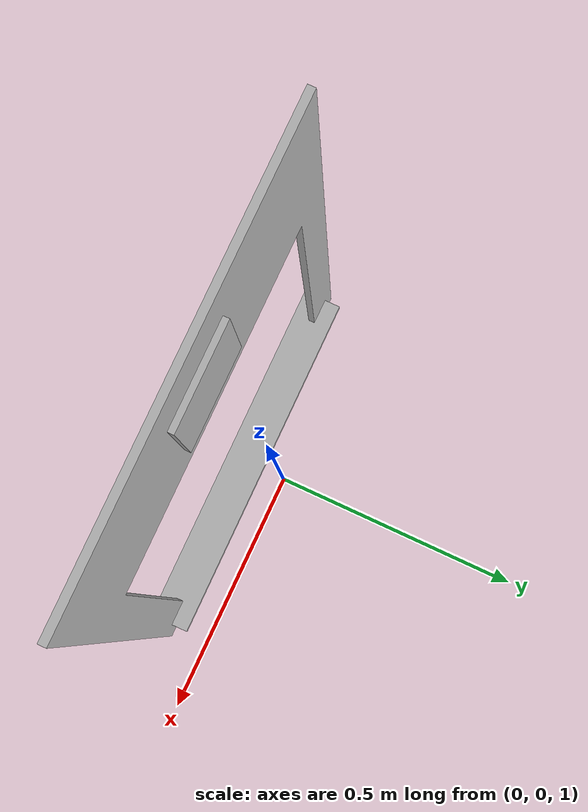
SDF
<?xml version='1.0'?>
<sdf version='1.5'>
    <model name="Cutout 6">
        <pose>0 0 1 0 0 0</pose>
        <static>true</static>
        <link name="cutout_obstacle">
            <collision name="collision">
                <geometry>
                    <mesh>
                        <uri>model://cutout_6/meshes/cutout.stl</uri>
                        <scale>1 1 1</scale>
                    </mesh>
                </geometry>
            </collision>

            <visual name="visual">
                <geometry>
                    <mesh>
                        <uri>model://cutout_6/meshes/cutout.stl</uri>
                        <scale>1 1 1</scale>
                    </mesh>
                </geometry>
            </visual>
        </link>
        <link name='april_tag_front'>
            <pose frame=''>0 -0.09 0.87 1.5708 -1.5708 0</pose>
            <visual name='at_visual_front'>
                <geometry>
                <box>
                <size>0.1651 0.1651 0.01</size>
                </box>
                </geometry>
                <material>
                <script>
                    <uri>model://Apriltag36_11_00006/materials/scripts</uri>
                    <uri>model://Apriltag36_11_00006/materials/textures</uri>
                    <name>Apriltag36_11_00006</name>
                </script>
                </material>
            </visual>
        </link>
        <link name='april_tag_back'>
            <pose frame=''>0 -0.06 0.87 1.5708 1.5708 0</pose>
            <visual name='at_visual_back'>
                <geometry>
                <box>
                <size>0.1651 0.1651 0.01</size>
                </box>
                </geometry>
                <material>
                <script>
                    <uri>model://Apriltag36_11_00006/materials/scripts</uri>
                    <uri>model://Apriltag36_11_00006/materials/textures</uri>
                    <name>Apriltag36_11_00006</name>
                </script>
                </material>
            </visual>
        </link>

    </model>
</sdf>
